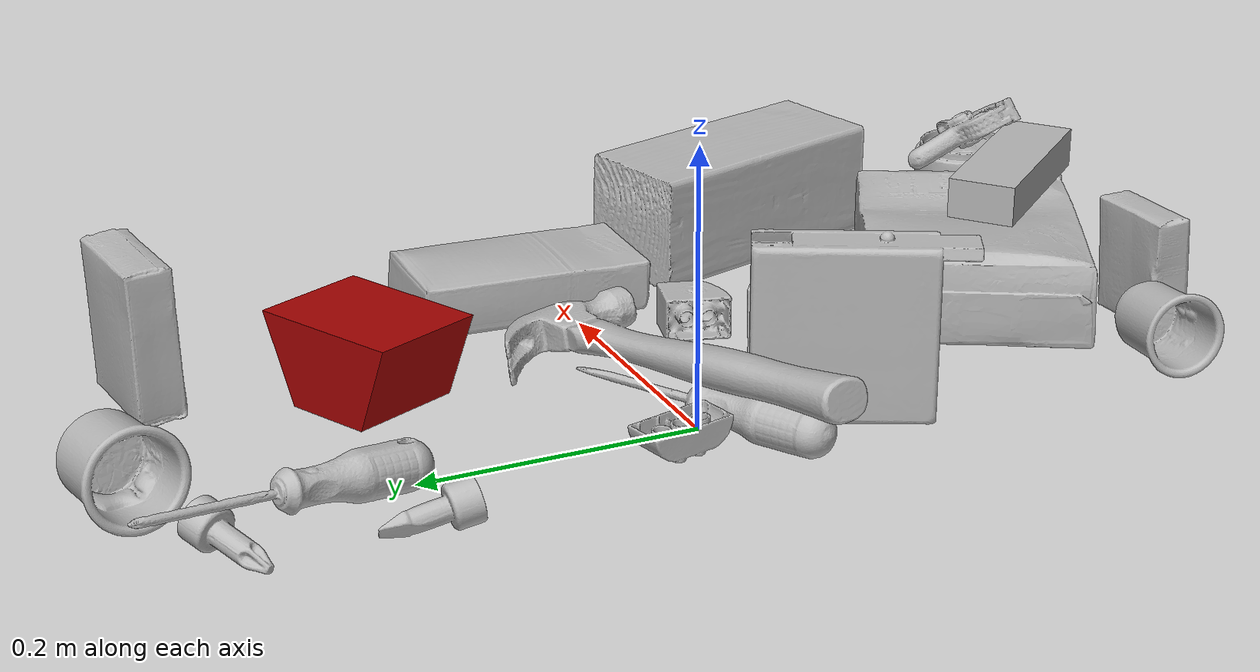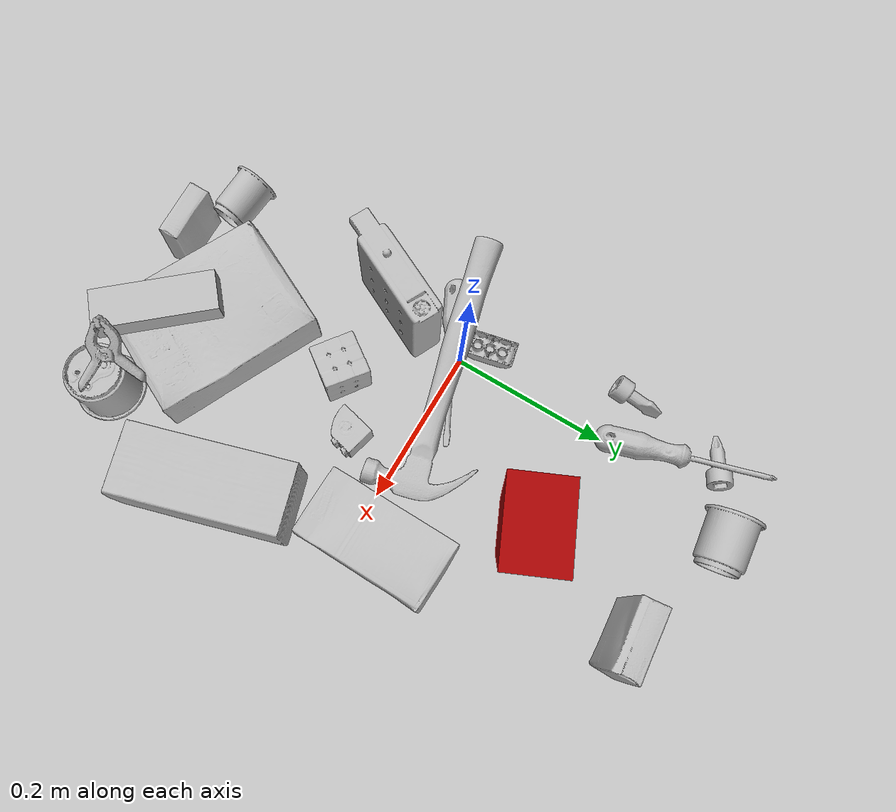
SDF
<sdf version="1.4">
  <world name="default">
    <light name="light1" type="point">
      <pose>0 0 1 0 0 0</pose>
      <diffuse>3 3 3 1</diffuse>
      <specular>3 3 3 1</specular>
    </light>
    <light name="light2" type="point">
      <pose>0 0.5 2 0 0 0</pose>
      <diffuse>1 1 1 1</diffuse>
      <specular>1 1 1 1</specular>
    </light>
    <light name="light3" type="point">
      <pose>0 0.5 2 0 0 0</pose>
      <diffuse>3 3 3 1</diffuse>
      <specular>3 3 3 1</specular>
    </light>
    <scene>
      <ambient>0.7 0.7 0.7</ambient>
    </scene>
    <model name="box21">
      <link name="link_box21">
        <collision name="default">
          <geometry>
            <mesh>
              <uri>model://cracker_box/collision_meshes/collision.obj</uri>
              <scale>1.0 1.0 1.0</scale>
            </mesh>
          </geometry>
          <surface>
            <friction>
              <ode>
                <mu>0.5</mu>
                <mu2>0.5</mu2>
              </ode>
            </friction>
          <contact>
        <ode>
            <max_vel>0</max_vel>
            <min_depth>0.0001</min_depth>
            <kp>1e8</kp>
        </ode>
    </contact></surface>
        </collision>
        <visual name="default">
          <geometry>
            <mesh>
              <uri>model://cracker_box/visual_meshes/visual.dae</uri>
              <scale>1.0 1.0 1.0</scale>
            </mesh>
          </geometry>
        </visual>
        <inertial>
          <mass>1.1849639415740967</mass>
          <pose>0.0009464144241064787 0.0002543424488976598 -0.0017029534792527556 -0.0003162077682631379 -0.011106487737543453 0.002546794536785776</pose>
          <inertia>
            <ixx>0.0030140192</ixx>
            <iyy>0.004976738</iyy>
            <izz>0.007102261</izz>
            <ixy>0</ixy>
            <ixz>0</ixz>
            <iyz>0</iyz>
          </inertia>
        </inertial>
      </link>
      <pose>0.12224502861499786 -0.2836364805698395 0.036481793969869614 -0.011788124133982126 -0.007367043465790021 2.682452728802142</pose>
    </model>
    <model name="box22">
      <link name="link_box22">
        <collision name="default">
          <geometry>
            <mesh>
              <uri>model://rubiks_cube/collision_meshes/collision.obj</uri>
              <scale>1.0 1.0 1.0</scale>
            </mesh>
          </geometry>
          <surface>
            <friction>
              <ode>
                <mu>0.5</mu>
                <mu2>0.5</mu2>
              </ode>
            </friction>
          <contact>
        <ode>
            <max_vel>0</max_vel>
            <min_depth>0.0001</min_depth>
            <kp>1e8</kp>
        </ode>
    </contact></surface>
        </collision>
        <visual name="default">
          <geometry>
            <mesh>
              <uri>model://rubiks_cube/visual_meshes/visual.dae</uri>
              <scale>1.0 1.0 1.0</scale>
            </mesh>
          </geometry>
        </visual>
        <inertial>
          <mass>0.10796652734279633</mass>
          <pose>2.6721041649580002e-05 5.2569666877388954e-05 -7.264316082000732e-06 -0.054672548620525036 -0.09813983330627576 -0.03445544186372042</pose>
          <inertia>
            <ixx>5.965876e-05</ixx>
            <iyy>5.9380527e-05</iyy>
            <izz>6.0153117e-05</izz>
            <ixy>0</ixy>
            <ixz>0</ixz>
            <iyz>0</iyz>
          </inertia>
        </inertial>
      </link>
      <pose>0.08980143070220947 -0.11799692362546921 0.02927333675324917 1.5698639462155426 -0.021679373828140287 0.9424834502439101</pose>
    </model>
    <model name="box23">
      <link name="link_box23">
        <collision name="default">
          <geometry>
            <mesh>
              <uri>model://sugar_box/collision_meshes/collision.obj</uri>
              <scale>1.0 1.0 1.0</scale>
            </mesh>
          </geometry>
          <surface>
            <friction>
              <ode>
                <mu>0.5</mu>
                <mu2>0.5</mu2>
              </ode>
            </friction>
          <contact>
        <ode>
            <max_vel>0</max_vel>
            <min_depth>0.0001</min_depth>
            <kp>1e8</kp>
        </ode>
    </contact></surface>
        </collision>
        <visual name="default">
          <geometry>
            <mesh>
              <uri>model://sugar_box/visual_meshes/visual.dae</uri>
              <scale>1.0 1.0 1.0</scale>
            </mesh>
          </geometry>
        </visual>
        <inertial>
          <mass>0.8519012928009033</mass>
          <pose>0.0010343727190047503 3.8491099985549226e-05 -0.0003636480832938105 -0.00040462606756407727 0.0010506635218583888 0.002615378789044619</pose>
          <inertia>
            <ixx>0.00070980185</ixx>
            <iyy>0.0022942254</iyy>
            <izz>0.0027464617</izz>
            <ixy>0</ixy>
            <ixz>0</ixz>
            <iyz>0</iyz>
          </inertia>
        </inertial>
      </link>
      <pose>0.24730536341667175 0.028554148972034454 0.02236238308250904 3.141270953165389 -0.025107721962547187 1.5560024265622903</pose>
    </model>
    <model name="cup1">
      <link name="link_cup1">
        <collision name="default">
          <geometry>
            <mesh>
              <uri>model://b_cups/collision_meshes/collision.obj</uri>
              <scale>1.0 1.0 1.0</scale>
            </mesh>
          </geometry>
          <surface>
            <friction>
              <ode>
                <mu>0.5</mu>
                <mu2>0.5</mu2>
              </ode>
            </friction>
          <contact>
        <ode>
            <max_vel>0</max_vel>
            <min_depth>0.0001</min_depth>
            <kp>1e8</kp>
        </ode>
    </contact></surface>
        </collision>
        <visual name="default">
          <geometry>
            <mesh>
              <uri>model://b_cups/visual_meshes/visual.dae</uri>
              <scale>1.0 1.0 1.0</scale>
            </mesh>
          </geometry>
        </visual>
        <inertial>
          <mass>0.025879299268126488</mass>
          <pose>0.0005181999877095222 0.0018058597343042493 -0.0013381816679611802 0.11356295314662153 0.03872538879904025 -0.34569789869984097</pose>
          <inertia>
            <ixx>1.6939814e-05</ixx>
            <iyy>1.6618207e-05</iyy>
            <izz>1.4254532e-05</izz>
            <ixy>0</ixy>
            <ixz>0</ixz>
            <iyz>0</iyz>
          </inertia>
        </inertial>
      </link>
      <pose>-0.034934334456920624 -0.34814453125 0.02738441899418831 1.4762109796273106 -0.09895882288983747 -1.6644744507586073</pose>
    </model>
    <model name="cup2">
      <link name="link_cup2">
        <collision name="default">
          <geometry>
            <mesh>
              <uri>model://g_cups/collision_meshes/collision.obj</uri>
              <scale>1.0 1.0 1.0</scale>
            </mesh>
          </geometry>
          <surface>
            <friction>
              <ode>
                <mu>0.5</mu>
                <mu2>0.5</mu2>
              </ode>
            </friction>
          <contact>
        <ode>
            <max_vel>0</max_vel>
            <min_depth>0.0001</min_depth>
            <kp>1e8</kp>
        </ode>
    </contact></surface>
        </collision>
        <visual name="default">
          <geometry>
            <mesh>
              <uri>model://g_cups/visual_meshes/visual.dae</uri>
              <scale>1.0 1.0 1.0</scale>
            </mesh>
          </geometry>
        </visual>
        <inertial>
          <mass>0.06683293730020523</mass>
          <pose>-0.0007946278783492744 -4.206685844110325e-05 -0.002132937777787447 -0.21382591566164685 -0.31410327542238353 0.3112138520870617</pose>
          <inertia>
            <ixx>7.8009005e-05</ixx>
            <iyy>7.7743636e-05</iyy>
            <izz>8.080389e-05</izz>
            <ixy>0</ixy>
            <ixz>0</ixz>
            <iyz>0</iyz>
          </inertia>
        </inertial>
      </link>
      <pose>0.2550152838230133 -0.3559795022010803 0.037116020917892456 -3.141592429501999 2.5974657731861896e-07 -1.8048328909309455</pose>
    </model>
    <model name="box11">
      <link name="link_box11">
        <collision name="default">
          <geometry>
            <mesh>
              <uri>model://wood_block/collision_meshes/collision.obj</uri>
              <scale>1.0 1.0 1.0</scale>
            </mesh>
          </geometry>
          <surface>
            <friction>
              <ode>
                <mu>0.5</mu>
                <mu2>0.5</mu2>
              </ode>
            </friction>
          <contact>
        <ode>
            <max_vel>0</max_vel>
            <min_depth>0.0001</min_depth>
            <kp>1e8</kp>
        </ode>
    </contact></surface>
        </collision>
        <visual name="default">
          <geometry>
            <mesh>
              <uri>model://wood_block/visual_meshes/visual.dae</uri>
              <scale>1.0 1.0 1.0</scale>
            </mesh>
          </geometry>
        </visual>
        <inertial>
          <mass>0.9227498173713684</mass>
          <pose>-5.813315056002466e-06 -0.0005708094104193151 0.0002640858292579651 -0.05221074847543751 -0.005192695234575722 -0.00686137748598008</pose>
          <inertia>
            <ixx>0.001234779</ixx>
            <iyy>0.0039006667</iyy>
            <izz>0.0038860766</izz>
            <ixy>0</ixy>
            <ixz>0</ixz>
            <iyz>0</iyz>
          </inertia>
        </inertial>
      </link>
      <pose>0.2948305010795593 -0.16970671713352203 0.045700669288635254 1.5681303734802883 -0.006938786275968992 1.8687244689669493</pose>
    </model>
    <model name="box12">
      <link name="link_box12">
        <collision name="default">
          <geometry>
            <mesh>
              <uri>model://pudding_box/collision_meshes/collision.obj</uri>
              <scale>1.0 1.0 1.0</scale>
            </mesh>
          </geometry>
          <surface>
            <friction>
              <ode>
                <mu>0.5</mu>
                <mu2>0.5</mu2>
              </ode>
            </friction>
          <contact>
        <ode>
            <max_vel>0</max_vel>
            <min_depth>0.0001</min_depth>
            <kp>1e8</kp>
        </ode>
    </contact></surface>
        </collision>
        <visual name="default">
          <geometry>
            <mesh>
              <uri>model://pudding_box/visual_meshes/visual.dae</uri>
              <scale>1.0 1.0 1.0</scale>
            </mesh>
          </geometry>
        </visual>
        <inertial>
          <mass>0.23326139152050018</mass>
          <pose>0.0004894821904599667 0.0008067885646596551 -0.0005188827635720372 0.0052131032034861725 -0.006603797335681708 0.02007982515858456</pose>
          <inertia>
            <ixx>0.00026369</ixx>
            <iyy>0.00017741251</iyy>
            <izz>0.00038940719</izz>
            <ixy>0</ixy>
            <ixz>0</ixz>
            <iyz>0</iyz>
          </inertia>
        </inertial>
      </link>
      <pose>0.19816827774047852 0.32770851254463196 0.0569014735519886 -1.6101111856642176 0.0049959799375876544 0.07462044065849874</pose>
    </model>
    <model name="box13">
      <link name="link_box13">
        <collision name="default">
          <geometry>
            <mesh>
              <uri>model://gelatin_box/collision_meshes/collision.obj</uri>
              <scale>1.0 1.0 1.0</scale>
            </mesh>
          </geometry>
          <surface>
            <friction>
              <ode>
                <mu>0.5</mu>
                <mu2>0.5</mu2>
              </ode>
            </friction>
          <contact>
        <ode>
            <max_vel>0</max_vel>
            <min_depth>0.0001</min_depth>
            <kp>1e8</kp>
        </ode>
    </contact></surface>
        </collision>
        <visual name="default">
          <geometry>
            <mesh>
              <uri>model://gelatin_box/visual_meshes/visual.dae</uri>
              <scale>1.0 1.0 1.0</scale>
            </mesh>
          </geometry>
        </visual>
        <inertial>
          <mass>0.0997389405965805</mass>
          <pose>0.0004319618456065655 0.00011156871187267825 -0.0003640321083366871 -0.001050372080915675 -0.004755817759010177 0.0164405576084854</pose>
          <inertia>
            <ixx>7.040755e-05</ixx>
            <iyy>5.0291743e-05</iyy>
            <izz>0.000107175976</izz>
            <ixy>0</ixy>
            <ixz>0</ixz>
            <iyz>0</iyz>
          </inertia>
        </inertial>
      </link>
      <pose>0.03383514657616615 -0.3757822513580322 0.04473695158958435 1.61397539612496 -0.0001384387776501221 -3.110592136757842</pose>
    </model>
    <model name="box14">
      <link name="link_box14">
        <collision name="default">
          <geometry>
            <mesh>
              <uri>model://jenga/collision_meshes/collision.obj</uri>
              <scale>1.0 1.0 1.0</scale>
            </mesh>
          </geometry>
          <surface>
            <friction>
              <ode>
                <mu>0.5</mu>
                <mu2>0.5</mu2>
              </ode>
            </friction>
          <contact>
        <ode>
            <max_vel>0</max_vel>
            <min_depth>0.0001</min_depth>
            <kp>1e8</kp>
        </ode>
    </contact></surface>
        </collision>
        <visual name="default">
          <geometry>
            <mesh>
              <uri>model://jenga/visual_meshes/visual.dae</uri>
              <scale>1.0 1.0 1.0</scale>
            </mesh>
          </geometry>
        </visual>
        <inertial>
          <mass>0.23366476595401764</mass>
          <pose>-2.502855807051674e-07 -0.0001025000965455547 -4.092339804628864e-05 0.0 -7.34215461761844e-07 0.0</pose>
          <inertia>
            <ixx>6.466071e-05</ixx>
            <iyy>0.0004381392</iyy>
            <izz>0.00046775083</izz>
            <ixy>0</ixy>
            <ixz>0</ixz>
            <iyz>0</iyz>
          </inertia>
        </inertial>
      </link>
      <pose>0.14960531890392303 -0.33402538299560547 0.08460727334022522 0.010746944378546315 0.0031895378571138353 -0.8560013625321861</pose>
    </model>
    <model name="cup15">
      <link name="link_cup15">
        <collision name="default">
          <geometry>
            <mesh>
              <uri>model://d_cups/collision_meshes/collision.obj</uri>
              <scale>1.0 1.0 1.0</scale>
            </mesh>
          </geometry>
          <surface>
            <friction>
              <ode>
                <mu>0.5</mu>
                <mu2>0.5</mu2>
              </ode>
            </friction>
          <contact>
        <ode>
            <max_vel>0</max_vel>
            <min_depth>0.0001</min_depth>
            <kp>1e8</kp>
        </ode>
    </contact></surface>
        </collision>
        <visual name="default">
          <geometry>
            <mesh>
              <uri>model://d_cups/visual_meshes/visual.dae</uri>
              <scale>1.0 1.0 1.0</scale>
            </mesh>
          </geometry>
        </visual>
        <inertial>
          <mass>0.05354860797524452</mass>
          <pose>0.000806806143373251 0.001911740517243743 -0.002266649389639497 0.240133395025133 -0.24708811164710584 0.5942101592185234</pose>
          <inertia>
            <ixx>4.4832785e-05</ixx>
            <iyy>4.470303e-05</iyy>
            <izz>4.0581297e-05</izz>
            <ixy>0</ixy>
            <ixz>0</ixz>
            <iyz>0</iyz>
          </inertia>
        </inertial>
      </link>
      <pose>0.04118378832936287 0.3799082338809967 0.032426074147224426 -1.4792704054996817 -0.01553533894665541 1.7134585371550413</pose>
    </model>
    <model name="toy1">
      <link name="link_toy1">
        <collision name="default">
          <geometry>
            <mesh>
              <uri>model://d_toy_airplane/collision_meshes/collision.obj</uri>
              <scale>1.0 1.0 1.0</scale>
            </mesh>
          </geometry>
          <surface>
            <friction>
              <ode>
                <mu>0.5</mu>
                <mu2>0.5</mu2>
              </ode>
            </friction>
          <contact>
        <ode>
            <max_vel>0</max_vel>
            <min_depth>0.0001</min_depth>
            <kp>1e8</kp>
        </ode>
    </contact></surface>
        </collision>
        <visual name="default">
          <geometry>
            <mesh>
              <uri>model://d_toy_airplane/visual_meshes/visual.dae</uri>
              <scale>1.0 1.0 1.0</scale>
            </mesh>
          </geometry>
        </visual>
        <inertial>
          <mass>0.01055214088410139</mass>
          <pose>9.410294296685606e-05 -5.809328649775125e-05 -0.011728094890713692 0.00026701540047293157 0.004678982739479609 0.5194739606880012</pose>
          <inertia>
            <ixx>3.1633276e-06</ixx>
            <iyy>3.1657132e-06</iyy>
            <izz>9.55029e-07</izz>
            <ixy>0</ixy>
            <ixz>0</ixz>
            <iyz>0</iyz>
          </inertia>
        </inertial>
      </link>
      <pose>-0.04858972504734993 0.33378005027770996 0.011231052689254284 2.2450817793099906 -1.195863207008297 -1.756099099789058</pose>
    </model>
    <model name="toy2">
      <link name="link_toy2">
        <collision name="default">
          <geometry>
            <mesh>
              <uri>model://d_lego_duplo/collision_meshes/collision.obj</uri>
              <scale>1.0 1.0 1.0</scale>
            </mesh>
          </geometry>
          <surface>
            <friction>
              <ode>
                <mu>0.5</mu>
                <mu2>0.5</mu2>
              </ode>
            </friction>
          <contact>
        <ode>
            <max_vel>0</max_vel>
            <min_depth>0.0001</min_depth>
            <kp>1e8</kp>
        </ode>
    </contact></surface>
        </collision>
        <visual name="default">
          <geometry>
            <mesh>
              <uri>model://d_lego_duplo/visual_meshes/visual.dae</uri>
              <scale>1.0 1.0 1.0</scale>
            </mesh>
          </geometry>
        </visual>
        <inertial>
          <mass>0.039816875010728836</mass>
          <pose>0.0028305640444159508 0.00016366131603717804 0.000858980929479003 0.08010950238605453 -0.3835521959243733 0.0010296761363168562</pose>
          <inertia>
            <ixx>7.70796e-06</ixx>
            <iyy>1.0939688e-05</iyy>
            <izz>1.0549791e-05</izz>
            <ixy>0</ixy>
            <ixz>0</ixz>
            <iyz>0</iyz>
          </inertia>
        </inertial>
      </link>
      <pose>0.15470930933952332 -0.07051035761833191 0.016234779730439186 1.5922808647921916 -0.015370740123935103 1.3279886603996371</pose>
    </model>
    <model name="toy3">
      <link name="link_toy3">
        <collision name="default">
          <geometry>
            <mesh>
              <uri>model://nine_hole_peg_test/collision_meshes/collision.obj</uri>
              <scale>1.0 1.0 1.0</scale>
            </mesh>
          </geometry>
          <surface>
            <friction>
              <ode>
                <mu>0.5</mu>
                <mu2>0.5</mu2>
              </ode>
            </friction>
          <contact>
        <ode>
            <max_vel>0</max_vel>
            <min_depth>0.0001</min_depth>
            <kp>1e8</kp>
        </ode>
    </contact></surface>
        </collision>
        <visual name="default">
          <geometry>
            <mesh>
              <uri>model://nine_hole_peg_test/visual_meshes/visual.dae</uri>
              <scale>1.0 1.0 1.0</scale>
            </mesh>
          </geometry>
        </visual>
        <inertial>
          <mass>0.7048692107200623</mass>
          <pose>-0.0046173869632184505 -0.009647614322602749 2.6460689696250483e-05 -0.0014666794682547425 0.0007194190753660851 -0.6342416580414534</pose>
          <inertia>
            <ixx>0.0011021789</ixx>
            <iyy>0.0010290928</iyy>
            <izz>0.0019313421</izz>
            <ixy>0</ixy>
            <ixz>0</ixz>
            <iyz>0</iyz>
          </inertia>
        </inertial>
      </link>
      <pose>-0.023126285523176193 -0.10851513594388962 0.06863497942686081 -1.6628400979087339 -1.5635964259829545 -1.9376391235496997</pose>
    </model>
    <model name="toy4">
      <link name="link_toy4">
        <collision name="default">
          <geometry>
            <mesh>
              <uri>model://a_lego_duplo/collision_meshes/collision.obj</uri>
              <scale>1.0 1.0 1.0</scale>
            </mesh>
          </geometry>
          <surface>
            <friction>
              <ode>
                <mu>0.5</mu>
                <mu2>0.5</mu2>
              </ode>
            </friction>
          <contact>
        <ode>
            <max_vel>0</max_vel>
            <min_depth>0.0001</min_depth>
            <kp>1e8</kp>
        </ode>
    </contact></surface>
        </collision>
        <visual name="default">
          <geometry>
            <mesh>
              <uri>model://a_lego_duplo/visual_meshes/visual.dae</uri>
              <scale>1.0 1.0 1.0</scale>
            </mesh>
          </geometry>
        </visual>
        <inertial>
          <mass>0.021006127819418907</mass>
          <pose>-0.00011337678006384522 0.00018517556600272655 0.0003692602913361043 -0.014116980161978756 -0.00012565077681184441 6.142327078429463e-05</pose>
          <inertia>
            <ixx>2.6931523e-06</ixx>
            <iyy>6.033251e-06</iyy>
            <izz>7.473524e-06</izz>
            <ixy>0</ixy>
            <ixz>0</ixz>
            <iyz>0</iyz>
          </inertia>
        </inertial>
      </link>
      <pose>-0.028331825509667397 0.026059307157993317 0.012124759145081043 -3.1413372445532604 -0.015547878400982738 -1.3542594846805485</pose>
    </model>
    <model name="toy5">
      <link name="link_toy5">
        <collision name="default">
          <geometry>
            <mesh>
              <uri>model://e_toy_airplane/collision_meshes/collision.obj</uri>
              <scale>1.0 1.0 1.0</scale>
            </mesh>
          </geometry>
          <surface>
            <friction>
              <ode>
                <mu>0.5</mu>
                <mu2>0.5</mu2>
              </ode>
            </friction>
          <contact>
        <ode>
            <max_vel>0</max_vel>
            <min_depth>0.0001</min_depth>
            <kp>1e8</kp>
        </ode>
    </contact></surface>
        </collision>
        <visual name="default">
          <geometry>
            <mesh>
              <uri>model://e_toy_airplane/visual_meshes/visual.dae</uri>
              <scale>1.0 1.0 1.0</scale>
            </mesh>
          </geometry>
        </visual>
        <inertial>
          <mass>0.02451101876795292</mass>
          <pose>0.00011740468471543863 -2.248291639261879e-05 -0.011187203228473663 0.00551850103187323 0.009228285956806933 0.150416364683818</pose>
          <inertia>
            <ixx>7.481042e-06</ixx>
            <iyy>7.4045165e-06</iyy>
            <izz>2.2483475e-06</izz>
            <ixy>0</ixy>
            <ixz>0</ixz>
            <iyz>0</iyz>
          </inertia>
        </inertial>
      </link>
      <pose>-0.06556658446788788 0.2149191051721573 0.012454701587557793 1.8066804355358317 0.7449357912499656 -3.019761208295119</pose>
    </model>
    <model name="toy6">
      <link name="link_toy6">
        <collision name="default">
          <geometry>
            <mesh>
              <uri>model://prism/collision_meshes/collision.obj</uri>
              <scale>1.0 1.0 1.0</scale>
            </mesh>
          </geometry>
          <surface>
            <friction>
              <ode>
                <mu>0.5</mu>
                <mu2>0.5</mu2>
              </ode>
            </friction>
          <contact>
        <ode>
            <max_vel>0</max_vel>
            <min_depth>0.0001</min_depth>
            <kp>1e8</kp>
        </ode>
    </contact></surface>
        </collision>
        <visual name="default">
          <geometry>
            <mesh>
              <uri>model://prism/visual_meshes/visual.dae</uri>
              <scale>1.0 1.0 1.0</scale>
            </mesh>
          </geometry>
        </visual>
        <inertial>
          <mass>0.639074981212616</mass>
          <pose>-9.85359656624496e-05 -4.96157269935793e-07 -0.003386910306289792 0.0 0.006559180766136186 0.0</pose>
          <inertia>
            <ixx>0.0005767573</ixx>
            <iyy>0.0006970186</iyy>
            <izz>0.0008537644</izz>
            <ixy>0</ixy>
            <ixz>0</ixz>
            <iyz>0</iyz>
          </inertia>
        </inertial>
      </link>
      <pose>0.13910378515720367 0.1813865453004837 0.031446874141693115 -3.1415926215667525 0.016646694089847706 0.4257086494090112</pose>
    </model>
    <model name="hardware1">
      <link name="link_hardware1">
        <collision name="default">
          <geometry>
            <mesh>
              <uri>model://medium_clamp/collision_meshes/collision.obj</uri>
              <scale>1.0 1.0 1.0</scale>
            </mesh>
          </geometry>
          <surface>
            <friction>
              <ode>
                <mu>0.5</mu>
                <mu2>0.5</mu2>
              </ode>
            </friction>
          <contact>
        <ode>
            <max_vel>0</max_vel>
            <min_depth>0.0001</min_depth>
            <kp>1e8</kp>
        </ode>
    </contact></surface>
        </collision>
        <visual name="default">
          <geometry>
            <mesh>
              <uri>model://medium_clamp/visual_meshes/visual.dae</uri>
              <scale>1.0 1.0 1.0</scale>
            </mesh>
          </geometry>
        </visual>
        <inertial>
          <mass>0.01437164656817913</mass>
          <pose>0.005390993785113096 0.00039532355731353164 -0.0001222158025484532 -0.001226922255807767 0.0025845058861846287 0.038207728721457376</pose>
          <inertia>
            <ixx>3.9153533e-06</ixx>
            <iyy>5.697947e-06</iyy>
            <izz>8.776544e-06</izz>
            <ixy>0</ixy>
            <ixz>0</ixz>
            <iyz>0</iyz>
          </inertia>
        </inertial>
      </link>
      <pose>0.2329431176185608 -0.3445028066635132 0.09119755029678345 -3.0852630400902803 -0.5259835628872891 -2.4443148874761995</pose>
    </model>
    <model name="hardware2">
      <link name="link_hardware2">
        <collision name="default">
          <geometry>
            <mesh>
              <uri>model://hammer/collision_meshes/collision.obj</uri>
              <scale>1.0 1.0 1.0</scale>
            </mesh>
          </geometry>
          <surface>
            <friction>
              <ode>
                <mu>0.5</mu>
                <mu2>0.5</mu2>
              </ode>
            </friction>
          <contact>
        <ode>
            <max_vel>0</max_vel>
            <min_depth>0.0001</min_depth>
            <kp>1e8</kp>
        </ode>
    </contact></surface>
        </collision>
        <visual name="default">
          <geometry>
            <mesh>
              <uri>model://hammer/visual_meshes/visual.dae</uri>
              <scale>1.0 1.0 1.0</scale>
            </mesh>
          </geometry>
        </visual>
        <inertial>
          <mass>0.29233166575431824</mass>
          <pose>0.009415771812200546 -0.011892357841134071 -0.0001235063245985657 0.02315535385536088 -0.004792164028838156 -0.01276032390705471</pose>
          <inertia>
            <ixx>0.0001252207</ixx>
            <iyy>0.003393116</iyy>
            <izz>0.0034903311</izz>
            <ixy>0</ixy>
            <ixz>0</ixz>
            <iyz>0</iyz>
          </inertia>
        </inertial>
      </link>
      <pose>0.03540372848510742 0.010883982293307781 0.03745171055197716 -0.04978589202838012 0.1745484925203369 0.22663318646834527</pose>
    </model>
    <model name="hardware3">
      <link name="link_hardware3">
        <collision name="default">
          <geometry>
            <mesh>
              <uri>model://phillips_screwdriver/collision_meshes/collision.obj</uri>
              <scale>1.0 1.0 1.0</scale>
            </mesh>
          </geometry>
          <surface>
            <friction>
              <ode>
                <mu>0.5</mu>
                <mu2>0.5</mu2>
              </ode>
            </friction>
          <contact>
        <ode>
            <max_vel>0</max_vel>
            <min_depth>0.0001</min_depth>
            <kp>1e8</kp>
        </ode>
    </contact></surface>
        </collision>
        <visual name="default">
          <geometry>
            <mesh>
              <uri>model://phillips_screwdriver/visual_meshes/visual.dae</uri>
              <scale>1.0 1.0 1.0</scale>
            </mesh>
          </geometry>
        </visual>
        <inertial>
          <mass>0.11685379594564438</mass>
          <pose>-0.04777182638645172 0.0010362302418798208 -0.0004555549821816385 -0.15721778382646787 0.005850995328295584 -0.002156740385256481</pose>
          <inertia>
            <ixx>1.3729124e-05</ixx>
            <iyy>0.00017213916</iyy>
            <izz>0.00017228544</izz>
            <ixy>0</ixy>
            <ixz>0</ixz>
            <iyz>0</iyz>
          </inertia>
        </inertial>
      </link>
      <pose>-0.025373272597789764 0.2907216250896454 0.026240171864628792 1.4835576516892983 -0.11762823880526554 1.8333696920549043</pose>
    </model>
    <model name="hardware4">
      <link name="link_hardware4">
        <collision name="default">
          <geometry>
            <mesh>
              <uri>model://flat_screwdriver/collision_meshes/collision.obj</uri>
              <scale>1.0 1.0 1.0</scale>
            </mesh>
          </geometry>
          <surface>
            <friction>
              <ode>
                <mu>0.5</mu>
                <mu2>0.5</mu2>
              </ode>
            </friction>
          <contact>
        <ode>
            <max_vel>0</max_vel>
            <min_depth>0.0001</min_depth>
            <kp>1e8</kp>
        </ode>
    </contact></surface>
        </collision>
        <visual name="default">
          <geometry>
            <mesh>
              <uri>model://flat_screwdriver/visual_meshes/visual.dae</uri>
              <scale>1.0 1.0 1.0</scale>
            </mesh>
          </geometry>
        </visual>
        <inertial>
          <mass>0.10915977507829666</mass>
          <pose>-0.0489187091588974 -0.0006576799787580967 -0.000614091579336673 -0.5614402636475724 -0.003233725963840683 0.006982283174401888</pose>
          <inertia>
            <ixx>1.2897148e-05</ixx>
            <iyy>0.0001637322</iyy>
            <izz>0.00016365637</izz>
            <ixy>0</ixy>
            <ixz>0</ixz>
            <iyz>0</iyz>
          </inertia>
        </inertial>
      </link>
      <pose>0.007816854864358902 -0.006670497357845306 0.01554120983928442 0.2376417925804871 0.04879770797534033 0.45283494676812974</pose>
    </model>
  <physics type="ode">
      <max_contacts>50</max_contacts>
      <ode>
        <solver>
          <type>quick</type>
          <iters>75</iters>
        </solver>
        <constraints>
          <contact_max_correcting_vel>0</contact_max_correcting_vel>
          <contact_surface_layer>0</contact_surface_layer>
        </constraints>
      </ode>
    </physics></world>
</sdf>
